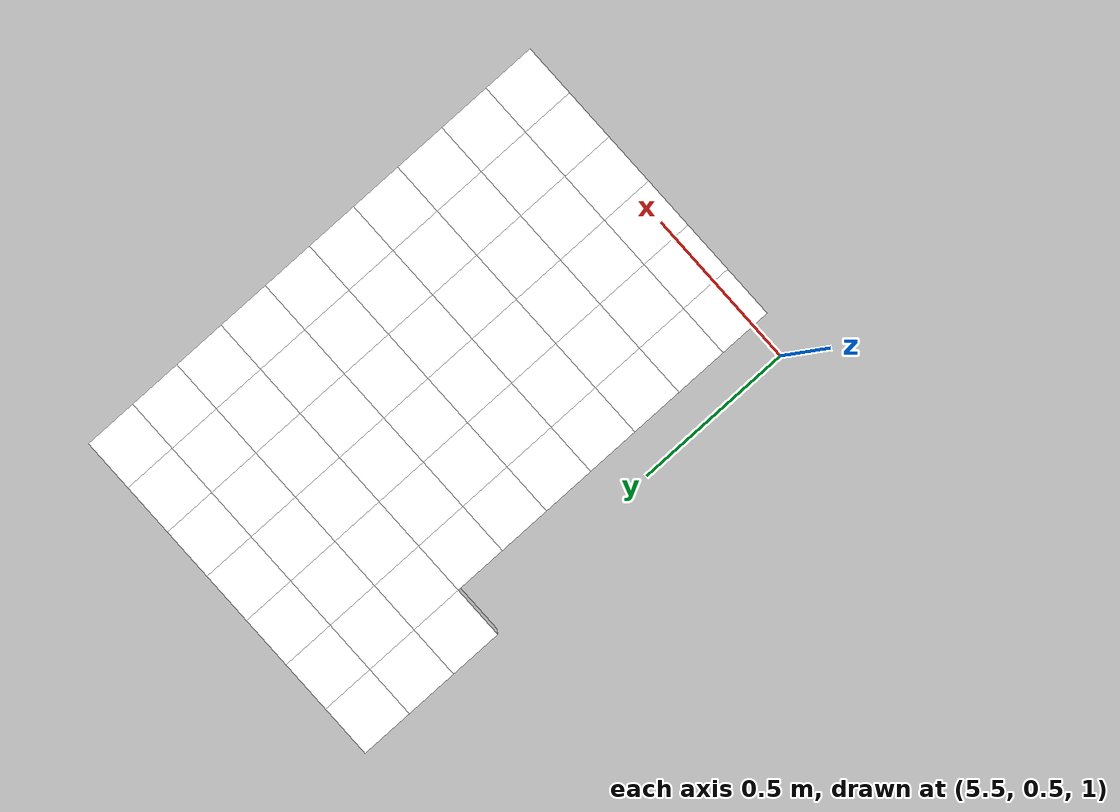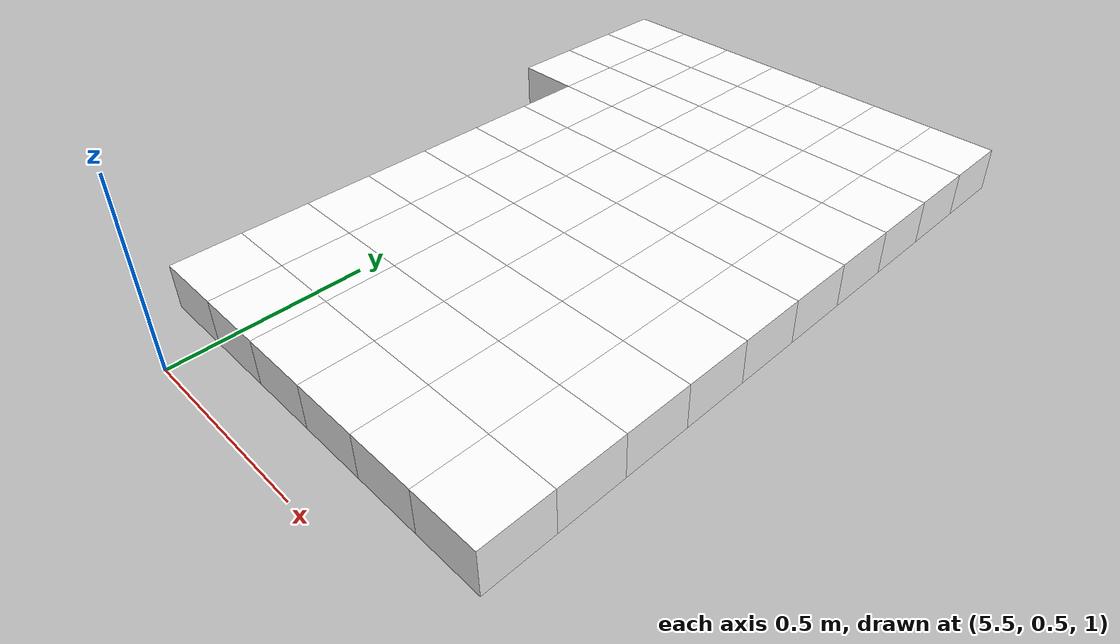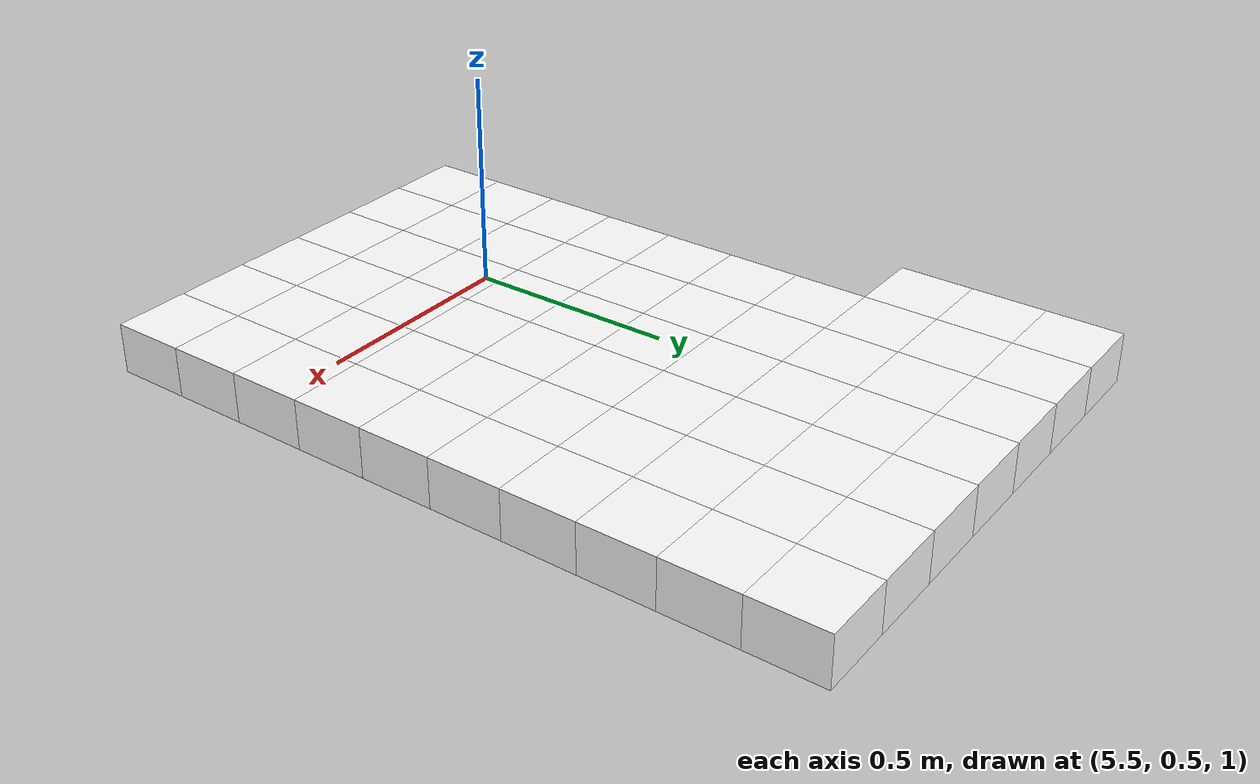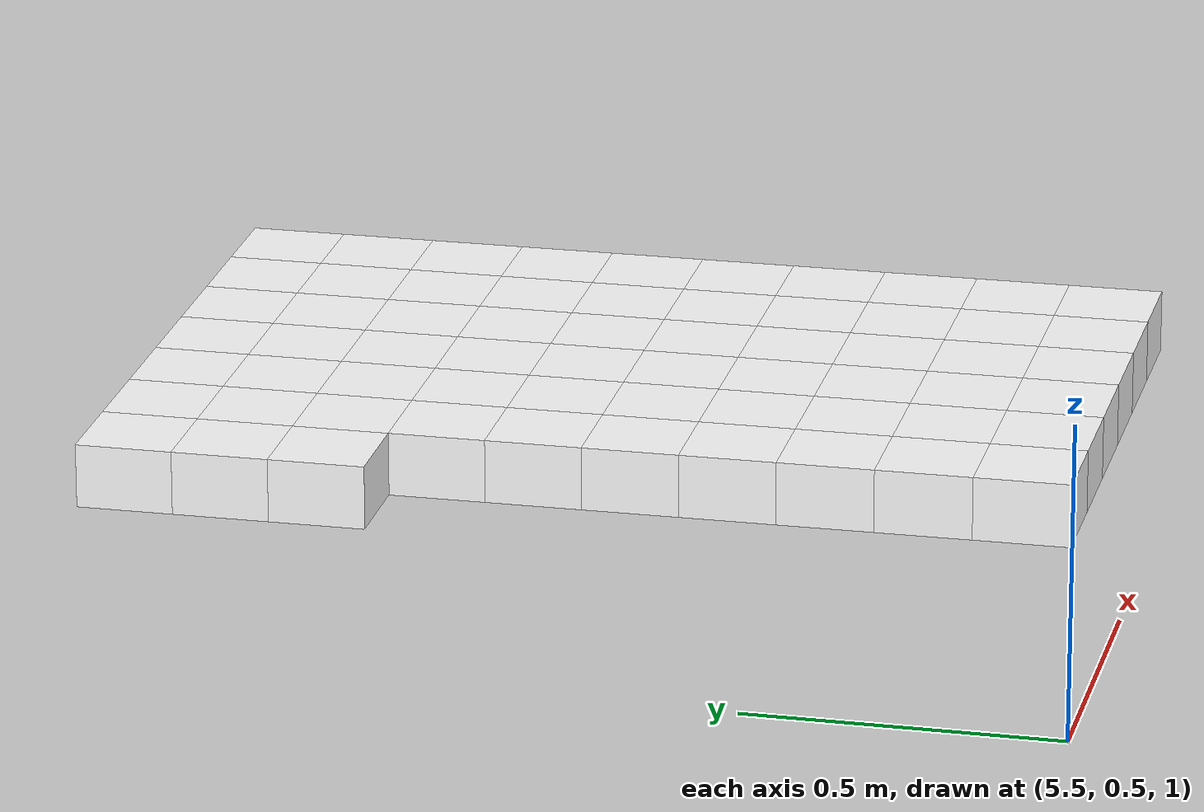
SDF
<sdf version="1.7">
 <world name="default">
  <include><uri>model://sun</uri></include>
  <model name="static_environment">
   <static>true</static>
   <link name="region_814">
    <pose>5.725000000000005 0.6 1.3 0.0 0.0 0.0</pose>
    <collision name="region_814_collision">
     <geometry><box><size>0.15 0.15 0.1</size></box></geometry>
     <surface><friction><ode><mu>1.0</mu><mu2>1.0</mu2></ode></friction></surface>
    </collision>
    <visual name="region_814_visual">
     <geometry><box><size>0.15 0.15 0.1</size></box></geometry>
     <material><ambient>1.0 1.0 1.0 1.0</ambient><diffuse>1.0 1.0 1.0 1.0</diffuse></material>
    </visual>
   </link>
   <link name="region_815">
    <pose>5.875000000000005 0.6 1.3 0.0 0.0 0.0</pose>
    <collision name="region_815_collision">
     <geometry><box><size>0.15 0.15 0.1</size></box></geometry>
     <surface><friction><ode><mu>1.0</mu><mu2>1.0</mu2></ode></friction></surface>
    </collision>
    <visual name="region_815_visual">
     <geometry><box><size>0.15 0.15 0.1</size></box></geometry>
     <material><ambient>1.0 1.0 1.0 1.0</ambient><diffuse>1.0 1.0 1.0 1.0</diffuse></material>
    </visual>
   </link>
   <link name="region_816">
    <pose>6.025000000000006 0.6 1.3 0.0 0.0 0.0</pose>
    <collision name="region_816_collision">
     <geometry><box><size>0.15 0.15 0.1</size></box></geometry>
     <surface><friction><ode><mu>1.0</mu><mu2>1.0</mu2></ode></friction></surface>
    </collision>
    <visual name="region_816_visual">
     <geometry><box><size>0.15 0.15 0.1</size></box></geometry>
     <material><ambient>1.0 1.0 1.0 1.0</ambient><diffuse>1.0 1.0 1.0 1.0</diffuse></material>
    </visual>
   </link>
   <link name="region_817">
    <pose>6.175000000000006 0.6 1.3 0.0 0.0 0.0</pose>
    <collision name="region_817_collision">
     <geometry><box><size>0.15 0.15 0.1</size></box></geometry>
     <surface><friction><ode><mu>1.0</mu><mu2>1.0</mu2></ode></friction></surface>
    </collision>
    <visual name="region_817_visual">
     <geometry><box><size>0.15 0.15 0.1</size></box></geometry>
     <material><ambient>1.0 1.0 1.0 1.0</ambient><diffuse>1.0 1.0 1.0 1.0</diffuse></material>
    </visual>
   </link>
   <link name="region_818">
    <pose>6.325000000000006 0.6 1.3 0.0 0.0 0.0</pose>
    <collision name="region_818_collision">
     <geometry><box><size>0.15 0.15 0.1</size></box></geometry>
     <surface><friction><ode><mu>1.0</mu><mu2>1.0</mu2></ode></friction></surface>
    </collision>
    <visual name="region_818_visual">
     <geometry><box><size>0.15 0.15 0.1</size></box></geometry>
     <material><ambient>1.0 1.0 1.0 1.0</ambient><diffuse>1.0 1.0 1.0 1.0</diffuse></material>
    </visual>
   </link>
   <link name="region_819">
    <pose>6.475000000000007 0.6 1.3 0.0 0.0 0.0</pose>
    <collision name="region_819_collision">
     <geometry><box><size>0.15 0.15 0.1</size></box></geometry>
     <surface><friction><ode><mu>1.0</mu><mu2>1.0</mu2></ode></friction></surface>
    </collision>
    <visual name="region_819_visual">
     <geometry><box><size>0.15 0.15 0.1</size></box></geometry>
     <material><ambient>1.0 1.0 1.0 1.0</ambient><diffuse>1.0 1.0 1.0 1.0</diffuse></material>
    </visual>
   </link>
   <link name="region_834">
    <pose>5.725000000000005 0.75 1.3 0.0 0.0 0.0</pose>
    <collision name="region_834_collision">
     <geometry><box><size>0.15 0.15 0.1</size></box></geometry>
     <surface><friction><ode><mu>1.0</mu><mu2>1.0</mu2></ode></friction></surface>
    </collision>
    <visual name="region_834_visual">
     <geometry><box><size>0.15 0.15 0.1</size></box></geometry>
     <material><ambient>1.0 1.0 1.0 1.0</ambient><diffuse>1.0 1.0 1.0 1.0</diffuse></material>
    </visual>
   </link>
   <link name="region_835">
    <pose>5.875000000000005 0.75 1.3 0.0 0.0 0.0</pose>
    <collision name="region_835_collision">
     <geometry><box><size>0.15 0.15 0.1</size></box></geometry>
     <surface><friction><ode><mu>1.0</mu><mu2>1.0</mu2></ode></friction></surface>
    </collision>
    <visual name="region_835_visual">
     <geometry><box><size>0.15 0.15 0.1</size></box></geometry>
     <material><ambient>1.0 1.0 1.0 1.0</ambient><diffuse>1.0 1.0 1.0 1.0</diffuse></material>
    </visual>
   </link>
   <link name="region_836">
    <pose>6.025000000000006 0.75 1.3 0.0 0.0 0.0</pose>
    <collision name="region_836_collision">
     <geometry><box><size>0.15 0.15 0.1</size></box></geometry>
     <surface><friction><ode><mu>1.0</mu><mu2>1.0</mu2></ode></friction></surface>
    </collision>
    <visual name="region_836_visual">
     <geometry><box><size>0.15 0.15 0.1</size></box></geometry>
     <material><ambient>1.0 1.0 1.0 1.0</ambient><diffuse>1.0 1.0 1.0 1.0</diffuse></material>
    </visual>
   </link>
   <link name="region_837">
    <pose>6.175000000000006 0.75 1.3 0.0 0.0 0.0</pose>
    <collision name="region_837_collision">
     <geometry><box><size>0.15 0.15 0.1</size></box></geometry>
     <surface><friction><ode><mu>1.0</mu><mu2>1.0</mu2></ode></friction></surface>
    </collision>
    <visual name="region_837_visual">
     <geometry><box><size>0.15 0.15 0.1</size></box></geometry>
     <material><ambient>1.0 1.0 1.0 1.0</ambient><diffuse>1.0 1.0 1.0 1.0</diffuse></material>
    </visual>
   </link>
   <link name="region_838">
    <pose>6.325000000000006 0.75 1.3 0.0 0.0 0.0</pose>
    <collision name="region_838_collision">
     <geometry><box><size>0.15 0.15 0.1</size></box></geometry>
     <surface><friction><ode><mu>1.0</mu><mu2>1.0</mu2></ode></friction></surface>
    </collision>
    <visual name="region_838_visual">
     <geometry><box><size>0.15 0.15 0.1</size></box></geometry>
     <material><ambient>1.0 1.0 1.0 1.0</ambient><diffuse>1.0 1.0 1.0 1.0</diffuse></material>
    </visual>
   </link>
   <link name="region_839">
    <pose>6.475000000000007 0.75 1.3 0.0 0.0 0.0</pose>
    <collision name="region_839_collision">
     <geometry><box><size>0.15 0.15 0.1</size></box></geometry>
     <surface><friction><ode><mu>1.0</mu><mu2>1.0</mu2></ode></friction></surface>
    </collision>
    <visual name="region_839_visual">
     <geometry><box><size>0.15 0.15 0.1</size></box></geometry>
     <material><ambient>1.0 1.0 1.0 1.0</ambient><diffuse>1.0 1.0 1.0 1.0</diffuse></material>
    </visual>
   </link>
   <link name="region_854">
    <pose>5.725000000000005 0.8999999999999999 1.3 0.0 0.0 0.0</pose>
    <collision name="region_854_collision">
     <geometry><box><size>0.15 0.15 0.1</size></box></geometry>
     <surface><friction><ode><mu>1.0</mu><mu2>1.0</mu2></ode></friction></surface>
    </collision>
    <visual name="region_854_visual">
     <geometry><box><size>0.15 0.15 0.1</size></box></geometry>
     <material><ambient>1.0 1.0 1.0 1.0</ambient><diffuse>1.0 1.0 1.0 1.0</diffuse></material>
    </visual>
   </link>
   <link name="region_855">
    <pose>5.875000000000005 0.8999999999999999 1.3 0.0 0.0 0.0</pose>
    <collision name="region_855_collision">
     <geometry><box><size>0.15 0.15 0.1</size></box></geometry>
     <surface><friction><ode><mu>1.0</mu><mu2>1.0</mu2></ode></friction></surface>
    </collision>
    <visual name="region_855_visual">
     <geometry><box><size>0.15 0.15 0.1</size></box></geometry>
     <material><ambient>1.0 1.0 1.0 1.0</ambient><diffuse>1.0 1.0 1.0 1.0</diffuse></material>
    </visual>
   </link>
   <link name="region_856">
    <pose>6.025000000000006 0.8999999999999999 1.3 0.0 0.0 0.0</pose>
    <collision name="region_856_collision">
     <geometry><box><size>0.15 0.15 0.1</size></box></geometry>
     <surface><friction><ode><mu>1.0</mu><mu2>1.0</mu2></ode></friction></surface>
    </collision>
    <visual name="region_856_visual">
     <geometry><box><size>0.15 0.15 0.1</size></box></geometry>
     <material><ambient>1.0 1.0 1.0 1.0</ambient><diffuse>1.0 1.0 1.0 1.0</diffuse></material>
    </visual>
   </link>
   <link name="region_857">
    <pose>6.175000000000006 0.8999999999999999 1.3 0.0 0.0 0.0</pose>
    <collision name="region_857_collision">
     <geometry><box><size>0.15 0.15 0.1</size></box></geometry>
     <surface><friction><ode><mu>1.0</mu><mu2>1.0</mu2></ode></friction></surface>
    </collision>
    <visual name="region_857_visual">
     <geometry><box><size>0.15 0.15 0.1</size></box></geometry>
     <material><ambient>1.0 1.0 1.0 1.0</ambient><diffuse>1.0 1.0 1.0 1.0</diffuse></material>
    </visual>
   </link>
   <link name="region_858">
    <pose>6.325000000000006 0.8999999999999999 1.3 0.0 0.0 0.0</pose>
    <collision name="region_858_collision">
     <geometry><box><size>0.15 0.15 0.1</size></box></geometry>
     <surface><friction><ode><mu>1.0</mu><mu2>1.0</mu2></ode></friction></surface>
    </collision>
    <visual name="region_858_visual">
     <geometry><box><size>0.15 0.15 0.1</size></box></geometry>
     <material><ambient>1.0 1.0 1.0 1.0</ambient><diffuse>1.0 1.0 1.0 1.0</diffuse></material>
    </visual>
   </link>
   <link name="region_859">
    <pose>6.475000000000007 0.8999999999999999 1.3 0.0 0.0 0.0</pose>
    <collision name="region_859_collision">
     <geometry><box><size>0.15 0.15 0.1</size></box></geometry>
     <surface><friction><ode><mu>1.0</mu><mu2>1.0</mu2></ode></friction></surface>
    </collision>
    <visual name="region_859_visual">
     <geometry><box><size>0.15 0.15 0.1</size></box></geometry>
     <material><ambient>1.0 1.0 1.0 1.0</ambient><diffuse>1.0 1.0 1.0 1.0</diffuse></material>
    </visual>
   </link>
   <link name="region_874">
    <pose>5.725000000000005 1.0499999999999998 1.3 0.0 0.0 0.0</pose>
    <collision name="region_874_collision">
     <geometry><box><size>0.15 0.15 0.1</size></box></geometry>
     <surface><friction><ode><mu>1.0</mu><mu2>1.0</mu2></ode></friction></surface>
    </collision>
    <visual name="region_874_visual">
     <geometry><box><size>0.15 0.15 0.1</size></box></geometry>
     <material><ambient>1.0 1.0 1.0 1.0</ambient><diffuse>1.0 1.0 1.0 1.0</diffuse></material>
    </visual>
   </link>
   <link name="region_875">
    <pose>5.875000000000005 1.0499999999999998 1.3 0.0 0.0 0.0</pose>
    <collision name="region_875_collision">
     <geometry><box><size>0.15 0.15 0.1</size></box></geometry>
     <surface><friction><ode><mu>1.0</mu><mu2>1.0</mu2></ode></friction></surface>
    </collision>
    <visual name="region_875_visual">
     <geometry><box><size>0.15 0.15 0.1</size></box></geometry>
     <material><ambient>1.0 1.0 1.0 1.0</ambient><diffuse>1.0 1.0 1.0 1.0</diffuse></material>
    </visual>
   </link>
   <link name="region_876">
    <pose>6.025000000000006 1.0499999999999998 1.3 0.0 0.0 0.0</pose>
    <collision name="region_876_collision">
     <geometry><box><size>0.15 0.15 0.1</size></box></geometry>
     <surface><friction><ode><mu>1.0</mu><mu2>1.0</mu2></ode></friction></surface>
    </collision>
    <visual name="region_876_visual">
     <geometry><box><size>0.15 0.15 0.1</size></box></geometry>
     <material><ambient>1.0 1.0 1.0 1.0</ambient><diffuse>1.0 1.0 1.0 1.0</diffuse></material>
    </visual>
   </link>
   <link name="region_877">
    <pose>6.175000000000006 1.0499999999999998 1.3 0.0 0.0 0.0</pose>
    <collision name="region_877_collision">
     <geometry><box><size>0.15 0.15 0.1</size></box></geometry>
     <surface><friction><ode><mu>1.0</mu><mu2>1.0</mu2></ode></friction></surface>
    </collision>
    <visual name="region_877_visual">
     <geometry><box><size>0.15 0.15 0.1</size></box></geometry>
     <material><ambient>1.0 1.0 1.0 1.0</ambient><diffuse>1.0 1.0 1.0 1.0</diffuse></material>
    </visual>
   </link>
   <link name="region_878">
    <pose>6.325000000000006 1.0499999999999998 1.3 0.0 0.0 0.0</pose>
    <collision name="region_878_collision">
     <geometry><box><size>0.15 0.15 0.1</size></box></geometry>
     <surface><friction><ode><mu>1.0</mu><mu2>1.0</mu2></ode></friction></surface>
    </collision>
    <visual name="region_878_visual">
     <geometry><box><size>0.15 0.15 0.1</size></box></geometry>
     <material><ambient>1.0 1.0 1.0 1.0</ambient><diffuse>1.0 1.0 1.0 1.0</diffuse></material>
    </visual>
   </link>
   <link name="region_879">
    <pose>6.475000000000007 1.0499999999999998 1.3 0.0 0.0 0.0</pose>
    <collision name="region_879_collision">
     <geometry><box><size>0.15 0.15 0.1</size></box></geometry>
     <surface><friction><ode><mu>1.0</mu><mu2>1.0</mu2></ode></friction></surface>
    </collision>
    <visual name="region_879_visual">
     <geometry><box><size>0.15 0.15 0.1</size></box></geometry>
     <material><ambient>1.0 1.0 1.0 1.0</ambient><diffuse>1.0 1.0 1.0 1.0</diffuse></material>
    </visual>
   </link>
   <link name="region_894">
    <pose>5.725000000000005 1.2 1.3 0.0 0.0 0.0</pose>
    <collision name="region_894_collision">
     <geometry><box><size>0.15 0.15 0.1</size></box></geometry>
     <surface><friction><ode><mu>1.0</mu><mu2>1.0</mu2></ode></friction></surface>
    </collision>
    <visual name="region_894_visual">
     <geometry><box><size>0.15 0.15 0.1</size></box></geometry>
     <material><ambient>1.0 1.0 1.0 1.0</ambient><diffuse>1.0 1.0 1.0 1.0</diffuse></material>
    </visual>
   </link>
   <link name="region_895">
    <pose>5.875000000000005 1.2 1.3 0.0 0.0 0.0</pose>
    <collision name="region_895_collision">
     <geometry><box><size>0.15 0.15 0.1</size></box></geometry>
     <surface><friction><ode><mu>1.0</mu><mu2>1.0</mu2></ode></friction></surface>
    </collision>
    <visual name="region_895_visual">
     <geometry><box><size>0.15 0.15 0.1</size></box></geometry>
     <material><ambient>1.0 1.0 1.0 1.0</ambient><diffuse>1.0 1.0 1.0 1.0</diffuse></material>
    </visual>
   </link>
   <link name="region_896">
    <pose>6.025000000000006 1.2 1.3 0.0 0.0 0.0</pose>
    <collision name="region_896_collision">
     <geometry><box><size>0.15 0.15 0.1</size></box></geometry>
     <surface><friction><ode><mu>1.0</mu><mu2>1.0</mu2></ode></friction></surface>
    </collision>
    <visual name="region_896_visual">
     <geometry><box><size>0.15 0.15 0.1</size></box></geometry>
     <material><ambient>1.0 1.0 1.0 1.0</ambient><diffuse>1.0 1.0 1.0 1.0</diffuse></material>
    </visual>
   </link>
   <link name="region_897">
    <pose>6.175000000000006 1.2 1.3 0.0 0.0 0.0</pose>
    <collision name="region_897_collision">
     <geometry><box><size>0.15 0.15 0.1</size></box></geometry>
     <surface><friction><ode><mu>1.0</mu><mu2>1.0</mu2></ode></friction></surface>
    </collision>
    <visual name="region_897_visual">
     <geometry><box><size>0.15 0.15 0.1</size></box></geometry>
     <material><ambient>1.0 1.0 1.0 1.0</ambient><diffuse>1.0 1.0 1.0 1.0</diffuse></material>
    </visual>
   </link>
   <link name="region_898">
    <pose>6.325000000000006 1.2 1.3 0.0 0.0 0.0</pose>
    <collision name="region_898_collision">
     <geometry><box><size>0.15 0.15 0.1</size></box></geometry>
     <surface><friction><ode><mu>1.0</mu><mu2>1.0</mu2></ode></friction></surface>
    </collision>
    <visual name="region_898_visual">
     <geometry><box><size>0.15 0.15 0.1</size></box></geometry>
     <material><ambient>1.0 1.0 1.0 1.0</ambient><diffuse>1.0 1.0 1.0 1.0</diffuse></material>
    </visual>
   </link>
   <link name="region_899">
    <pose>6.475000000000007 1.2 1.3 0.0 0.0 0.0</pose>
    <collision name="region_899_collision">
     <geometry><box><size>0.15 0.15 0.1</size></box></geometry>
     <surface><friction><ode><mu>1.0</mu><mu2>1.0</mu2></ode></friction></surface>
    </collision>
    <visual name="region_899_visual">
     <geometry><box><size>0.15 0.15 0.1</size></box></geometry>
     <material><ambient>1.0 1.0 1.0 1.0</ambient><diffuse>1.0 1.0 1.0 1.0</diffuse></material>
    </visual>
   </link>
   <link name="region_914">
    <pose>5.725000000000005 1.35 1.3 0.0 0.0 0.0</pose>
    <collision name="region_914_collision">
     <geometry><box><size>0.15 0.15 0.1</size></box></geometry>
     <surface><friction><ode><mu>1.0</mu><mu2>1.0</mu2></ode></friction></surface>
    </collision>
    <visual name="region_914_visual">
     <geometry><box><size>0.15 0.15 0.1</size></box></geometry>
     <material><ambient>1.0 1.0 1.0 1.0</ambient><diffuse>1.0 1.0 1.0 1.0</diffuse></material>
    </visual>
   </link>
   <link name="region_915">
    <pose>5.875000000000005 1.35 1.3 0.0 0.0 0.0</pose>
    <collision name="region_915_collision">
     <geometry><box><size>0.15 0.15 0.1</size></box></geometry>
     <surface><friction><ode><mu>1.0</mu><mu2>1.0</mu2></ode></friction></surface>
    </collision>
    <visual name="region_915_visual">
     <geometry><box><size>0.15 0.15 0.1</size></box></geometry>
     <material><ambient>1.0 1.0 1.0 1.0</ambient><diffuse>1.0 1.0 1.0 1.0</diffuse></material>
    </visual>
   </link>
   <link name="region_916">
    <pose>6.025000000000006 1.35 1.3 0.0 0.0 0.0</pose>
    <collision name="region_916_collision">
     <geometry><box><size>0.15 0.15 0.1</size></box></geometry>
     <surface><friction><ode><mu>1.0</mu><mu2>1.0</mu2></ode></friction></surface>
    </collision>
    <visual name="region_916_visual">
     <geometry><box><size>0.15 0.15 0.1</size></box></geometry>
     <material><ambient>1.0 1.0 1.0 1.0</ambient><diffuse>1.0 1.0 1.0 1.0</diffuse></material>
    </visual>
   </link>
   <link name="region_917">
    <pose>6.175000000000006 1.35 1.3 0.0 0.0 0.0</pose>
    <collision name="region_917_collision">
     <geometry><box><size>0.15 0.15 0.1</size></box></geometry>
     <surface><friction><ode><mu>1.0</mu><mu2>1.0</mu2></ode></friction></surface>
    </collision>
    <visual name="region_917_visual">
     <geometry><box><size>0.15 0.15 0.1</size></box></geometry>
     <material><ambient>1.0 1.0 1.0 1.0</ambient><diffuse>1.0 1.0 1.0 1.0</diffuse></material>
    </visual>
   </link>
   <link name="region_918">
    <pose>6.325000000000006 1.35 1.3 0.0 0.0 0.0</pose>
    <collision name="region_918_collision">
     <geometry><box><size>0.15 0.15 0.1</size></box></geometry>
     <surface><friction><ode><mu>1.0</mu><mu2>1.0</mu2></ode></friction></surface>
    </collision>
    <visual name="region_918_visual">
     <geometry><box><size>0.15 0.15 0.1</size></box></geometry>
     <material><ambient>1.0 1.0 1.0 1.0</ambient><diffuse>1.0 1.0 1.0 1.0</diffuse></material>
    </visual>
   </link>
   <link name="region_919">
    <pose>6.475000000000007 1.35 1.3 0.0 0.0 0.0</pose>
    <collision name="region_919_collision">
     <geometry><box><size>0.15 0.15 0.1</size></box></geometry>
     <surface><friction><ode><mu>1.0</mu><mu2>1.0</mu2></ode></friction></surface>
    </collision>
    <visual name="region_919_visual">
     <geometry><box><size>0.15 0.15 0.1</size></box></geometry>
     <material><ambient>1.0 1.0 1.0 1.0</ambient><diffuse>1.0 1.0 1.0 1.0</diffuse></material>
    </visual>
   </link>
   <link name="region_934">
    <pose>5.725000000000005 1.5 1.3 0.0 0.0 0.0</pose>
    <collision name="region_934_collision">
     <geometry><box><size>0.15 0.15 0.1</size></box></geometry>
     <surface><friction><ode><mu>1.0</mu><mu2>1.0</mu2></ode></friction></surface>
    </collision>
    <visual name="region_934_visual">
     <geometry><box><size>0.15 0.15 0.1</size></box></geometry>
     <material><ambient>1.0 1.0 1.0 1.0</ambient><diffuse>1.0 1.0 1.0 1.0</diffuse></material>
    </visual>
   </link>
   <link name="region_935">
    <pose>5.875000000000005 1.5 1.3 0.0 0.0 0.0</pose>
    <collision name="region_935_collision">
     <geometry><box><size>0.15 0.15 0.1</size></box></geometry>
     <surface><friction><ode><mu>1.0</mu><mu2>1.0</mu2></ode></friction></surface>
    </collision>
    <visual name="region_935_visual">
     <geometry><box><size>0.15 0.15 0.1</size></box></geometry>
     <material><ambient>1.0 1.0 1.0 1.0</ambient><diffuse>1.0 1.0 1.0 1.0</diffuse></material>
    </visual>
   </link>
   <link name="region_936">
    <pose>6.025000000000006 1.5 1.3 0.0 0.0 0.0</pose>
    <collision name="region_936_collision">
     <geometry><box><size>0.15 0.15 0.1</size></box></geometry>
     <surface><friction><ode><mu>1.0</mu><mu2>1.0</mu2></ode></friction></surface>
    </collision>
    <visual name="region_936_visual">
     <geometry><box><size>0.15 0.15 0.1</size></box></geometry>
     <material><ambient>1.0 1.0 1.0 1.0</ambient><diffuse>1.0 1.0 1.0 1.0</diffuse></material>
    </visual>
   </link>
   <link name="region_937">
    <pose>6.175000000000006 1.5 1.3 0.0 0.0 0.0</pose>
    <collision name="region_937_collision">
     <geometry><box><size>0.15 0.15 0.1</size></box></geometry>
     <surface><friction><ode><mu>1.0</mu><mu2>1.0</mu2></ode></friction></surface>
    </collision>
    <visual name="region_937_visual">
     <geometry><box><size>0.15 0.15 0.1</size></box></geometry>
     <material><ambient>1.0 1.0 1.0 1.0</ambient><diffuse>1.0 1.0 1.0 1.0</diffuse></material>
    </visual>
   </link>
   <link name="region_938">
    <pose>6.325000000000006 1.5 1.3 0.0 0.0 0.0</pose>
    <collision name="region_938_collision">
     <geometry><box><size>0.15 0.15 0.1</size></box></geometry>
     <surface><friction><ode><mu>1.0</mu><mu2>1.0</mu2></ode></friction></surface>
    </collision>
    <visual name="region_938_visual">
     <geometry><box><size>0.15 0.15 0.1</size></box></geometry>
     <material><ambient>1.0 1.0 1.0 1.0</ambient><diffuse>1.0 1.0 1.0 1.0</diffuse></material>
    </visual>
   </link>
   <link name="region_939">
    <pose>6.475000000000007 1.5 1.3 0.0 0.0 0.0</pose>
    <collision name="region_939_collision">
     <geometry><box><size>0.15 0.15 0.1</size></box></geometry>
     <surface><friction><ode><mu>1.0</mu><mu2>1.0</mu2></ode></friction></surface>
    </collision>
    <visual name="region_939_visual">
     <geometry><box><size>0.15 0.15 0.1</size></box></geometry>
     <material><ambient>1.0 1.0 1.0 1.0</ambient><diffuse>1.0 1.0 1.0 1.0</diffuse></material>
    </visual>
   </link>
   <link name="region_953">
    <pose>5.575000000000005 1.65 1.3 0.0 0.0 0.0</pose>
    <collision name="region_953_collision">
     <geometry><box><size>0.15 0.15 0.1</size></box></geometry>
     <surface><friction><ode><mu>1.0</mu><mu2>1.0</mu2></ode></friction></surface>
    </collision>
    <visual name="region_953_visual">
     <geometry><box><size>0.15 0.15 0.1</size></box></geometry>
     <material><ambient>1.0 1.0 1.0 1.0</ambient><diffuse>1.0 1.0 1.0 1.0</diffuse></material>
    </visual>
   </link>
   <link name="region_954">
    <pose>5.725000000000005 1.65 1.3 0.0 0.0 0.0</pose>
    <collision name="region_954_collision">
     <geometry><box><size>0.15 0.15 0.1</size></box></geometry>
     <surface><friction><ode><mu>1.0</mu><mu2>1.0</mu2></ode></friction></surface>
    </collision>
    <visual name="region_954_visual">
     <geometry><box><size>0.15 0.15 0.1</size></box></geometry>
     <material><ambient>1.0 1.0 1.0 1.0</ambient><diffuse>1.0 1.0 1.0 1.0</diffuse></material>
    </visual>
   </link>
   <link name="region_955">
    <pose>5.875000000000005 1.65 1.3 0.0 0.0 0.0</pose>
    <collision name="region_955_collision">
     <geometry><box><size>0.15 0.15 0.1</size></box></geometry>
     <surface><friction><ode><mu>1.0</mu><mu2>1.0</mu2></ode></friction></surface>
    </collision>
    <visual name="region_955_visual">
     <geometry><box><size>0.15 0.15 0.1</size></box></geometry>
     <material><ambient>1.0 1.0 1.0 1.0</ambient><diffuse>1.0 1.0 1.0 1.0</diffuse></material>
    </visual>
   </link>
   <link name="region_956">
    <pose>6.025000000000006 1.65 1.3 0.0 0.0 0.0</pose>
    <collision name="region_956_collision">
     <geometry><box><size>0.15 0.15 0.1</size></box></geometry>
     <surface><friction><ode><mu>1.0</mu><mu2>1.0</mu2></ode></friction></surface>
    </collision>
    <visual name="region_956_visual">
     <geometry><box><size>0.15 0.15 0.1</size></box></geometry>
     <material><ambient>1.0 1.0 1.0 1.0</ambient><diffuse>1.0 1.0 1.0 1.0</diffuse></material>
    </visual>
   </link>
   <link name="region_957">
    <pose>6.175000000000006 1.65 1.3 0.0 0.0 0.0</pose>
    <collision name="region_957_collision">
     <geometry><box><size>0.15 0.15 0.1</size></box></geometry>
     <surface><friction><ode><mu>1.0</mu><mu2>1.0</mu2></ode></friction></surface>
    </collision>
    <visual name="region_957_visual">
     <geometry><box><size>0.15 0.15 0.1</size></box></geometry>
     <material><ambient>1.0 1.0 1.0 1.0</ambient><diffuse>1.0 1.0 1.0 1.0</diffuse></material>
    </visual>
   </link>
   <link name="region_958">
    <pose>6.325000000000006 1.65 1.3 0.0 0.0 0.0</pose>
    <collision name="region_958_collision">
     <geometry><box><size>0.15 0.15 0.1</size></box></geometry>
     <surface><friction><ode><mu>1.0</mu><mu2>1.0</mu2></ode></friction></surface>
    </collision>
    <visual name="region_958_visual">
     <geometry><box><size>0.15 0.15 0.1</size></box></geometry>
     <material><ambient>1.0 1.0 1.0 1.0</ambient><diffuse>1.0 1.0 1.0 1.0</diffuse></material>
    </visual>
   </link>
   <link name="region_959">
    <pose>6.475000000000007 1.65 1.3 0.0 0.0 0.0</pose>
    <collision name="region_959_collision">
     <geometry><box><size>0.15 0.15 0.1</size></box></geometry>
     <surface><friction><ode><mu>1.0</mu><mu2>1.0</mu2></ode></friction></surface>
    </collision>
    <visual name="region_959_visual">
     <geometry><box><size>0.15 0.15 0.1</size></box></geometry>
     <material><ambient>1.0 1.0 1.0 1.0</ambient><diffuse>1.0 1.0 1.0 1.0</diffuse></material>
    </visual>
   </link>
   <link name="region_973">
    <pose>5.575000000000005 1.7999999999999998 1.3 0.0 0.0 0.0</pose>
    <collision name="region_973_collision">
     <geometry><box><size>0.15 0.15 0.1</size></box></geometry>
     <surface><friction><ode><mu>1.0</mu><mu2>1.0</mu2></ode></friction></surface>
    </collision>
    <visual name="region_973_visual">
     <geometry><box><size>0.15 0.15 0.1</size></box></geometry>
     <material><ambient>1.0 1.0 1.0 1.0</ambient><diffuse>1.0 1.0 1.0 1.0</diffuse></material>
    </visual>
   </link>
   <link name="region_974">
    <pose>5.725000000000005 1.7999999999999998 1.3 0.0 0.0 0.0</pose>
    <collision name="region_974_collision">
     <geometry><box><size>0.15 0.15 0.1</size></box></geometry>
     <surface><friction><ode><mu>1.0</mu><mu2>1.0</mu2></ode></friction></surface>
    </collision>
    <visual name="region_974_visual">
     <geometry><box><size>0.15 0.15 0.1</size></box></geometry>
     <material><ambient>1.0 1.0 1.0 1.0</ambient><diffuse>1.0 1.0 1.0 1.0</diffuse></material>
    </visual>
   </link>
   <link name="region_975">
    <pose>5.875000000000005 1.7999999999999998 1.3 0.0 0.0 0.0</pose>
    <collision name="region_975_collision">
     <geometry><box><size>0.15 0.15 0.1</size></box></geometry>
     <surface><friction><ode><mu>1.0</mu><mu2>1.0</mu2></ode></friction></surface>
    </collision>
    <visual name="region_975_visual">
     <geometry><box><size>0.15 0.15 0.1</size></box></geometry>
     <material><ambient>1.0 1.0 1.0 1.0</ambient><diffuse>1.0 1.0 1.0 1.0</diffuse></material>
    </visual>
   </link>
   <link name="region_976">
    <pose>6.025000000000006 1.7999999999999998 1.3 0.0 0.0 0.0</pose>
    <collision name="region_976_collision">
     <geometry><box><size>0.15 0.15 0.1</size></box></geometry>
     <surface><friction><ode><mu>1.0</mu><mu2>1.0</mu2></ode></friction></surface>
    </collision>
    <visual name="region_976_visual">
     <geometry><box><size>0.15 0.15 0.1</size></box></geometry>
     <material><ambient>1.0 1.0 1.0 1.0</ambient><diffuse>1.0 1.0 1.0 1.0</diffuse></material>
    </visual>
   </link>
   <link name="region_977">
    <pose>6.175000000000006 1.7999999999999998 1.3 0.0 0.0 0.0</pose>
    <collision name="region_977_collision">
     <geometry><box><size>0.15 0.15 0.1</size></box></geometry>
     <surface><friction><ode><mu>1.0</mu><mu2>1.0</mu2></ode></friction></surface>
    </collision>
    <visual name="region_977_visual">
     <geometry><box><size>0.15 0.15 0.1</size></box></geometry>
     <material><ambient>1.0 1.0 1.0 1.0</ambient><diffuse>1.0 1.0 1.0 1.0</diffuse></material>
    </visual>
   </link>
   <link name="region_978">
    <pose>6.325000000000006 1.7999999999999998 1.3 0.0 0.0 0.0</pose>
    <collision name="region_978_collision">
     <geometry><box><size>0.15 0.15 0.1</size></box></geometry>
     <surface><friction><ode><mu>1.0</mu><mu2>1.0</mu2></ode></friction></surface>
    </collision>
    <visual name="region_978_visual">
     <geometry><box><size>0.15 0.15 0.1</size></box></geometry>
     <material><ambient>1.0 1.0 1.0 1.0</ambient><diffuse>1.0 1.0 1.0 1.0</diffuse></material>
    </visual>
   </link>
   <link name="region_979">
    <pose>6.475000000000007 1.7999999999999998 1.3 0.0 0.0 0.0</pose>
    <collision name="region_979_collision">
     <geometry><box><size>0.15 0.15 0.1</size></box></geometry>
     <surface><friction><ode><mu>1.0</mu><mu2>1.0</mu2></ode></friction></surface>
    </collision>
    <visual name="region_979_visual">
     <geometry><box><size>0.15 0.15 0.1</size></box></geometry>
     <material><ambient>1.0 1.0 1.0 1.0</ambient><diffuse>1.0 1.0 1.0 1.0</diffuse></material>
    </visual>
   </link>
   <link name="region_993">
    <pose>5.575000000000005 1.9499999999999997 1.3 0.0 0.0 0.0</pose>
    <collision name="region_993_collision">
     <geometry><box><size>0.15 0.15 0.1</size></box></geometry>
     <surface><friction><ode><mu>1.0</mu><mu2>1.0</mu2></ode></friction></surface>
    </collision>
    <visual name="region_993_visual">
     <geometry><box><size>0.15 0.15 0.1</size></box></geometry>
     <material><ambient>1.0 1.0 1.0 1.0</ambient><diffuse>1.0 1.0 1.0 1.0</diffuse></material>
    </visual>
   </link>
   <link name="region_994">
    <pose>5.725000000000005 1.9499999999999997 1.3 0.0 0.0 0.0</pose>
    <collision name="region_994_collision">
     <geometry><box><size>0.15 0.15 0.1</size></box></geometry>
     <surface><friction><ode><mu>1.0</mu><mu2>1.0</mu2></ode></friction></surface>
    </collision>
    <visual name="region_994_visual">
     <geometry><box><size>0.15 0.15 0.1</size></box></geometry>
     <material><ambient>1.0 1.0 1.0 1.0</ambient><diffuse>1.0 1.0 1.0 1.0</diffuse></material>
    </visual>
   </link>
   <link name="region_995">
    <pose>5.875000000000005 1.9499999999999997 1.3 0.0 0.0 0.0</pose>
    <collision name="region_995_collision">
     <geometry><box><size>0.15 0.15 0.1</size></box></geometry>
     <surface><friction><ode><mu>1.0</mu><mu2>1.0</mu2></ode></friction></surface>
    </collision>
    <visual name="region_995_visual">
     <geometry><box><size>0.15 0.15 0.1</size></box></geometry>
     <material><ambient>1.0 1.0 1.0 1.0</ambient><diffuse>1.0 1.0 1.0 1.0</diffuse></material>
    </visual>
   </link>
   <link name="region_996">
    <pose>6.025000000000006 1.9499999999999997 1.3 0.0 0.0 0.0</pose>
    <collision name="region_996_collision">
     <geometry><box><size>0.15 0.15 0.1</size></box></geometry>
     <surface><friction><ode><mu>1.0</mu><mu2>1.0</mu2></ode></friction></surface>
    </collision>
    <visual name="region_996_visual">
     <geometry><box><size>0.15 0.15 0.1</size></box></geometry>
     <material><ambient>1.0 1.0 1.0 1.0</ambient><diffuse>1.0 1.0 1.0 1.0</diffuse></material>
    </visual>
   </link>
   <link name="region_997">
    <pose>6.175000000000006 1.9499999999999997 1.3 0.0 0.0 0.0</pose>
    <collision name="region_997_collision">
     <geometry><box><size>0.15 0.15 0.1</size></box></geometry>
     <surface><friction><ode><mu>1.0</mu><mu2>1.0</mu2></ode></friction></surface>
    </collision>
    <visual name="region_997_visual">
     <geometry><box><size>0.15 0.15 0.1</size></box></geometry>
     <material><ambient>1.0 1.0 1.0 1.0</ambient><diffuse>1.0 1.0 1.0 1.0</diffuse></material>
    </visual>
   </link>
   <link name="region_998">
    <pose>6.325000000000006 1.9499999999999997 1.3 0.0 0.0 0.0</pose>
    <collision name="region_998_collision">
     <geometry><box><size>0.15 0.15 0.1</size></box></geometry>
     <surface><friction><ode><mu>1.0</mu><mu2>1.0</mu2></ode></friction></surface>
    </collision>
    <visual name="region_998_visual">
     <geometry><box><size>0.15 0.15 0.1</size></box></geometry>
     <material><ambient>1.0 1.0 1.0 1.0</ambient><diffuse>1.0 1.0 1.0 1.0</diffuse></material>
    </visual>
   </link>
   <link name="region_999">
    <pose>6.475000000000007 1.9499999999999997 1.3 0.0 0.0 0.0</pose>
    <collision name="region_999_collision">
     <geometry><box><size>0.15 0.15 0.1</size></box></geometry>
     <surface><friction><ode><mu>1.0</mu><mu2>1.0</mu2></ode></friction></surface>
    </collision>
    <visual name="region_999_visual">
     <geometry><box><size>0.15 0.15 0.1</size></box></geometry>
     <material><ambient>1.0 1.0 1.0 1.0</ambient><diffuse>1.0 1.0 1.0 1.0</diffuse></material>
    </visual>
   </link>
  </model>
 </world>
</sdf>
